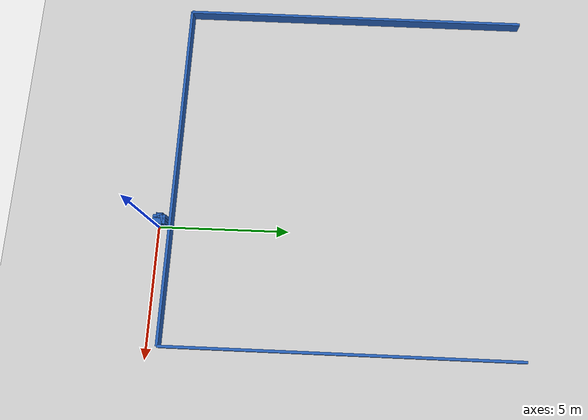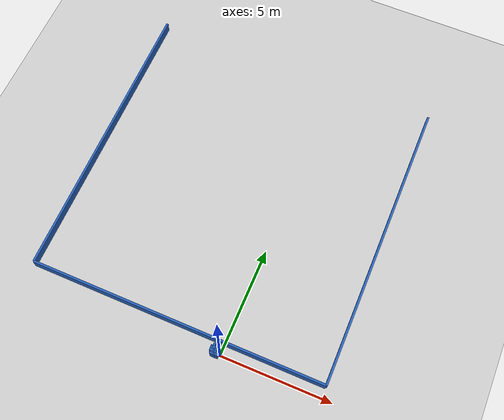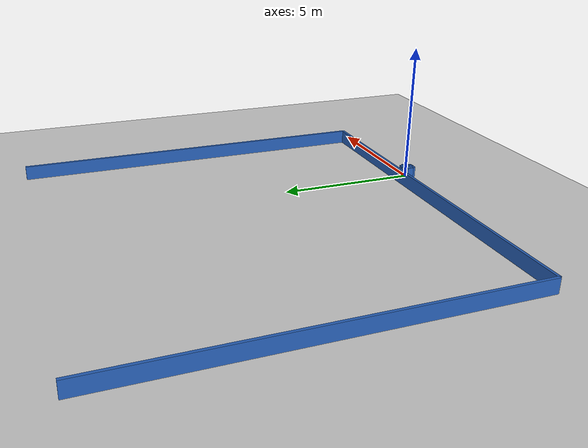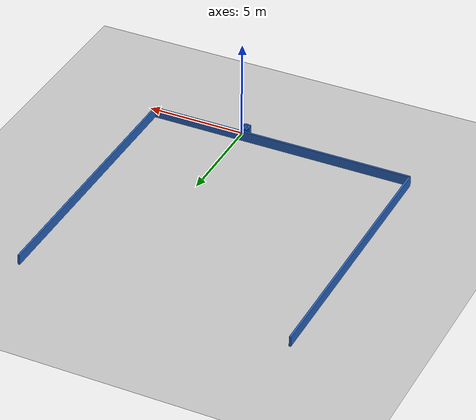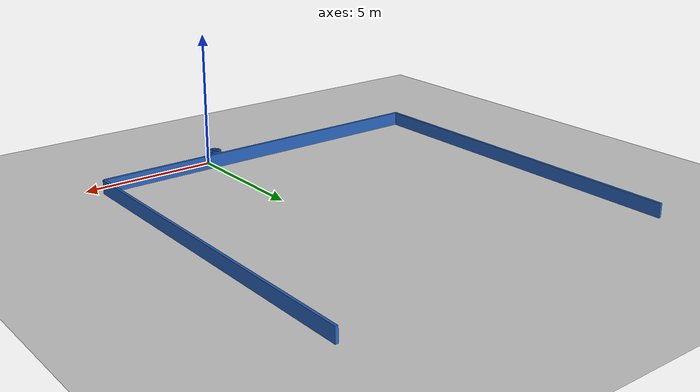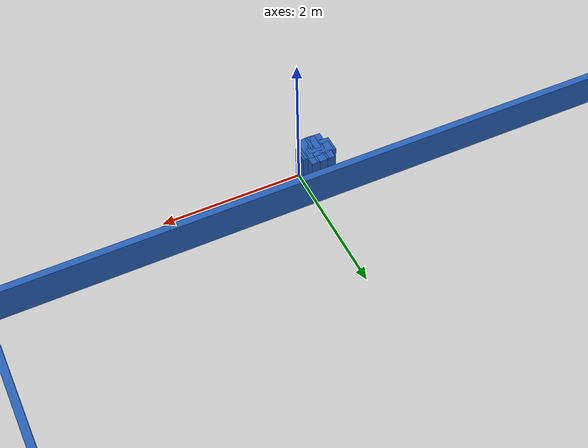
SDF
<?xml version="1.0" ?>
    <sdf version="1.5">
      <world name="default">
        <!-- A global light source -->
        <include>
          <uri>model://sun</uri>
        </include>
        <!-- A ground plane -->
        <include>
          <uri>model://ground_plane</uri>
        </include>

    <model name='libopen_space_final_T2B_112_81'>
      <static>1</static>
      <pose frame=''>-0.225000 0.075000 0.000000 0.000000 0.000000 0.000000</pose>
      <link name='link'>
        <inertial>
          <mass>1</mass>
          <inertia>
            <ixx>0.145833</ixx>
            <ixy>0</ixy>
            <ixz>0</ixz>
            <iyy>0.145833</iyy>
            <iyz>0</iyz>
            <izz>0.125</izz>
          </inertia>
        </inertial>
        <collision name='collision'>
          <geometry>
            <box>
              <size>0.11 0.49 1</size>
            </box>
          </geometry>
          <max_contacts>10</max_contacts>
          <surface>
            <contact>
              <ode/>
            </contact>
            <bounce/>
            <friction>
              <torsional>
                <ode/>
              </torsional>
              <ode/>
            </friction>
          </surface>
        </collision>
        <visual name='visual'>
          <geometry>
            <box>
              <size>0.11 0.49 1</size>
            </box>
          </geometry>
	    <material>
              <ambient>0.152000 0.379000 0.720000 1</ambient>
	      <diffuse>0.152000 0.379000 0.720000 1</diffuse>
          </material>
          <material>
            <script>
              <name>Gazebo/Grey</name>
              <uri>file://media/materials/scripts/gazebo.material</uri>
            </script>
          </material>
        </visual>
        <self_collide>0</self_collide>
        <kinematic>0</kinematic>
        <gravity>1</gravity>
      </link>
      <plugin name='libopen_space_final_T2B_112_81' filename='libopen_space_final_T2B_112_81.so'/>
    </model>

    <model name='libopen_space_final_T2B_115_72'>
      <static>1</static>
      <pose frame=''>-0.225000 0.075000 0.000000 0.000000 0.000000 0.000000</pose>
      <link name='link'>
        <inertial>
          <mass>1</mass>
          <inertia>
            <ixx>0.145833</ixx>
            <ixy>0</ixy>
            <ixz>0</ixz>
            <iyy>0.145833</iyy>
            <iyz>0</iyz>
            <izz>0.125</izz>
          </inertia>
        </inertial>
        <collision name='collision'>
          <geometry>
            <box>
              <size>0.43 0.20 1</size>
            </box>
          </geometry>
          <max_contacts>10</max_contacts>
          <surface>
            <contact>
              <ode/>
            </contact>
            <bounce/>
            <friction>
              <torsional>
                <ode/>
              </torsional>
              <ode/>
            </friction>
          </surface>
        </collision>
        <visual name='visual'>
          <geometry>
            <box>
              <size>0.43 0.20 1</size>
            </box>
          </geometry>
	    <material>
              <ambient>0.152000 0.379000 0.720000 1</ambient>
	      <diffuse>0.152000 0.379000 0.720000 1</diffuse>
          </material>
          <material>
            <script>
              <name>Gazebo/Grey</name>
              <uri>file://media/materials/scripts/gazebo.material</uri>
            </script>
          </material>
        </visual>
        <self_collide>0</self_collide>
        <kinematic>0</kinematic>
        <gravity>1</gravity>
      </link>
      <plugin name='libopen_space_final_T2B_115_72' filename='libopen_space_final_T2B_115_72.so'/>
    </model>

    <model name='libopen_space_final_T2B_77_83'>
      <static>1</static>
      <pose frame=''>-0.225000 0.075000 0.000000 0.000000 0.000000 0.000000</pose>
      <link name='link'>
        <inertial>
          <mass>1</mass>
          <inertia>
            <ixx>0.145833</ixx>
            <ixy>0</ixy>
            <ixz>0</ixz>
            <iyy>0.145833</iyy>
            <iyz>0</iyz>
            <izz>0.125</izz>
          </inertia>
        </inertial>
        <collision name='collision'>
          <geometry>
            <box>
              <size>0.16 0.39 1</size>
            </box>
          </geometry>
          <max_contacts>10</max_contacts>
          <surface>
            <contact>
              <ode/>
            </contact>
            <bounce/>
            <friction>
              <torsional>
                <ode/>
              </torsional>
              <ode/>
            </friction>
          </surface>
        </collision>
        <visual name='visual'>
          <geometry>
            <box>
              <size>0.16 0.39 1</size>
            </box>
          </geometry>
	    <material>
              <ambient>0.152000 0.379000 0.720000 1</ambient>
	      <diffuse>0.152000 0.379000 0.720000 1</diffuse>
          </material>
          <material>
            <script>
              <name>Gazebo/Grey</name>
              <uri>file://media/materials/scripts/gazebo.material</uri>
            </script>
          </material>
        </visual>
        <self_collide>0</self_collide>
        <kinematic>0</kinematic>
        <gravity>1</gravity>
      </link>
      <plugin name='libopen_space_final_T2B_77_83' filename='libopen_space_final_T2B_77_83.so'/>
    </model>

    <model name='libopen_space_final_T2B_81_4'>
      <static>1</static>
      <pose frame=''>-0.225000 0.075000 0.000000 0.000000 0.000000 0.000000</pose>
      <link name='link'>
        <inertial>
          <mass>1</mass>
          <inertia>
            <ixx>0.145833</ixx>
            <ixy>0</ixy>
            <ixz>0</ixz>
            <iyy>0.145833</iyy>
            <iyz>0</iyz>
            <izz>0.125</izz>
          </inertia>
        </inertial>
        <collision name='collision'>
          <geometry>
            <box>
              <size>0.17 0.46 1</size>
            </box>
          </geometry>
          <max_contacts>10</max_contacts>
          <surface>
            <contact>
              <ode/>
            </contact>
            <bounce/>
            <friction>
              <torsional>
                <ode/>
              </torsional>
              <ode/>
            </friction>
          </surface>
        </collision>
        <visual name='visual'>
          <geometry>
            <box>
              <size>0.17 0.46 1</size>
            </box>
          </geometry>
	    <material>
              <ambient>0.152000 0.379000 0.720000 1</ambient>
	      <diffuse>0.152000 0.379000 0.720000 1</diffuse>
          </material>
          <material>
            <script>
              <name>Gazebo/Grey</name>
              <uri>file://media/materials/scripts/gazebo.material</uri>
            </script>
          </material>
        </visual>
        <self_collide>0</self_collide>
        <kinematic>0</kinematic>
        <gravity>1</gravity>
      </link>
      <plugin name='libopen_space_final_T2B_81_4' filename='libopen_space_final_T2B_81_4.so'/>
    </model>

    <model name='libopen_space_final_T2B_83_23'>
      <static>1</static>
      <pose frame=''>-0.225000 0.075000 0.000000 0.000000 0.000000 0.000000</pose>
      <link name='link'>
        <inertial>
          <mass>1</mass>
          <inertia>
            <ixx>0.145833</ixx>
            <ixy>0</ixy>
            <ixz>0</ixz>
            <iyy>0.145833</iyy>
            <iyz>0</iyz>
            <izz>0.125</izz>
          </inertia>
        </inertial>
        <collision name='collision'>
          <geometry>
            <box>
              <size>0.35 0.48 1</size>
            </box>
          </geometry>
          <max_contacts>10</max_contacts>
          <surface>
            <contact>
              <ode/>
            </contact>
            <bounce/>
            <friction>
              <torsional>
                <ode/>
              </torsional>
              <ode/>
            </friction>
          </surface>
        </collision>
        <visual name='visual'>
          <geometry>
            <box>
              <size>0.35 0.48 1</size>
            </box>
          </geometry>
	    <material>
              <ambient>0.152000 0.379000 0.720000 1</ambient>
	      <diffuse>0.152000 0.379000 0.720000 1</diffuse>
          </material>
          <material>
            <script>
              <name>Gazebo/Grey</name>
              <uri>file://media/materials/scripts/gazebo.material</uri>
            </script>
          </material>
        </visual>
        <self_collide>0</self_collide>
        <kinematic>0</kinematic>
        <gravity>1</gravity>
      </link>
      <plugin name='libopen_space_final_T2B_83_23' filename='libopen_space_final_T2B_83_23.so'/>
    </model>

    <model name='libopen_space_final_T2B_67_47'>
      <static>1</static>
      <pose frame=''>-0.225000 0.075000 0.000000 0.000000 0.000000 0.000000</pose>
      <link name='link'>
        <inertial>
          <mass>1</mass>
          <inertia>
            <ixx>0.145833</ixx>
            <ixy>0</ixy>
            <ixz>0</ixz>
            <iyy>0.145833</iyy>
            <iyz>0</iyz>
            <izz>0.125</izz>
          </inertia>
        </inertial>
        <collision name='collision'>
          <geometry>
            <box>
              <size>0.23 0.10 1</size>
            </box>
          </geometry>
          <max_contacts>10</max_contacts>
          <surface>
            <contact>
              <ode/>
            </contact>
            <bounce/>
            <friction>
              <torsional>
                <ode/>
              </torsional>
              <ode/>
            </friction>
          </surface>
        </collision>
        <visual name='visual'>
          <geometry>
            <box>
              <size>0.23 0.10 1</size>
            </box>
          </geometry>
	    <material>
              <ambient>0.152000 0.379000 0.720000 1</ambient>
	      <diffuse>0.152000 0.379000 0.720000 1</diffuse>
          </material>
          <material>
            <script>
              <name>Gazebo/Grey</name>
              <uri>file://media/materials/scripts/gazebo.material</uri>
            </script>
          </material>
        </visual>
        <self_collide>0</self_collide>
        <kinematic>0</kinematic>
        <gravity>1</gravity>
      </link>
      <plugin name='libopen_space_final_T2B_67_47' filename='libopen_space_final_T2B_67_47.so'/>
    </model>

    <model name='libopen_space_final_T2B_105_94'>
      <static>1</static>
      <pose frame=''>-0.225000 0.075000 0.000000 0.000000 0.000000 0.000000</pose>
      <link name='link'>
        <inertial>
          <mass>1</mass>
          <inertia>
            <ixx>0.145833</ixx>
            <ixy>0</ixy>
            <ixz>0</ixz>
            <iyy>0.145833</iyy>
            <iyz>0</iyz>
            <izz>0.125</izz>
          </inertia>
        </inertial>
        <collision name='collision'>
          <geometry>
            <box>
              <size>0.31 0.26 1</size>
            </box>
          </geometry>
          <max_contacts>10</max_contacts>
          <surface>
            <contact>
              <ode/>
            </contact>
            <bounce/>
            <friction>
              <torsional>
                <ode/>
              </torsional>
              <ode/>
            </friction>
          </surface>
        </collision>
        <visual name='visual'>
          <geometry>
            <box>
              <size>0.31 0.26 1</size>
            </box>
          </geometry>
	    <material>
              <ambient>0.152000 0.379000 0.720000 1</ambient>
	      <diffuse>0.152000 0.379000 0.720000 1</diffuse>
          </material>
          <material>
            <script>
              <name>Gazebo/Grey</name>
              <uri>file://media/materials/scripts/gazebo.material</uri>
            </script>
          </material>
        </visual>
        <self_collide>0</self_collide>
        <kinematic>0</kinematic>
        <gravity>1</gravity>
      </link>
      <plugin name='libopen_space_final_T2B_105_94' filename='libopen_space_final_T2B_105_94.so'/>
    </model>

    <model name='libopen_space_final_T2B_90_76'>
      <static>1</static>
      <pose frame=''>-0.225000 0.075000 0.000000 0.000000 0.000000 0.000000</pose>
      <link name='link'>
        <inertial>
          <mass>1</mass>
          <inertia>
            <ixx>0.145833</ixx>
            <ixy>0</ixy>
            <ixz>0</ixz>
            <iyy>0.145833</iyy>
            <iyz>0</iyz>
            <izz>0.125</izz>
          </inertia>
        </inertial>
        <collision name='collision'>
          <geometry>
            <box>
              <size>0.49 0.24 1</size>
            </box>
          </geometry>
          <max_contacts>10</max_contacts>
          <surface>
            <contact>
              <ode/>
            </contact>
            <bounce/>
            <friction>
              <torsional>
                <ode/>
              </torsional>
              <ode/>
            </friction>
          </surface>
        </collision>
        <visual name='visual'>
          <geometry>
            <box>
              <size>0.49 0.24 1</size>
            </box>
          </geometry>
	    <material>
              <ambient>0.152000 0.379000 0.720000 1</ambient>
	      <diffuse>0.152000 0.379000 0.720000 1</diffuse>
          </material>
          <material>
            <script>
              <name>Gazebo/Grey</name>
              <uri>file://media/materials/scripts/gazebo.material</uri>
            </script>
          </material>
        </visual>
        <self_collide>0</self_collide>
        <kinematic>0</kinematic>
        <gravity>1</gravity>
      </link>
      <plugin name='libopen_space_final_T2B_90_76' filename='libopen_space_final_T2B_90_76.so'/>
    </model>

    <model name='libopen_space_final_T2B_80_70'>
      <static>1</static>
      <pose frame=''>-0.225000 0.075000 0.000000 0.000000 0.000000 0.000000</pose>
      <link name='link'>
        <inertial>
          <mass>1</mass>
          <inertia>
            <ixx>0.145833</ixx>
            <ixy>0</ixy>
            <ixz>0</ixz>
            <iyy>0.145833</iyy>
            <iyz>0</iyz>
            <izz>0.125</izz>
          </inertia>
        </inertial>
        <collision name='collision'>
          <geometry>
            <box>
              <size>0.18 0.33 1</size>
            </box>
          </geometry>
          <max_contacts>10</max_contacts>
          <surface>
            <contact>
              <ode/>
            </contact>
            <bounce/>
            <friction>
              <torsional>
                <ode/>
              </torsional>
              <ode/>
            </friction>
          </surface>
        </collision>
        <visual name='visual'>
          <geometry>
            <box>
              <size>0.18 0.33 1</size>
            </box>
          </geometry>
	    <material>
              <ambient>0.152000 0.379000 0.720000 1</ambient>
	      <diffuse>0.152000 0.379000 0.720000 1</diffuse>
          </material>
          <material>
            <script>
              <name>Gazebo/Grey</name>
              <uri>file://media/materials/scripts/gazebo.material</uri>
            </script>
          </material>
        </visual>
        <self_collide>0</self_collide>
        <kinematic>0</kinematic>
        <gravity>1</gravity>
      </link>
      <plugin name='libopen_space_final_T2B_80_70' filename='libopen_space_final_T2B_80_70.so'/>
    </model>

    <model name='libopen_space_final_T2B_77_65'>
      <static>1</static>
      <pose frame=''>-0.225000 0.075000 0.000000 0.000000 0.000000 0.000000</pose>
      <link name='link'>
        <inertial>
          <mass>1</mass>
          <inertia>
            <ixx>0.145833</ixx>
            <ixy>0</ixy>
            <ixz>0</ixz>
            <iyy>0.145833</iyy>
            <iyz>0</iyz>
            <izz>0.125</izz>
          </inertia>
        </inertial>
        <collision name='collision'>
          <geometry>
            <box>
              <size>0.16 0.25 1</size>
            </box>
          </geometry>
          <max_contacts>10</max_contacts>
          <surface>
            <contact>
              <ode/>
            </contact>
            <bounce/>
            <friction>
              <torsional>
                <ode/>
              </torsional>
              <ode/>
            </friction>
          </surface>
        </collision>
        <visual name='visual'>
          <geometry>
            <box>
              <size>0.16 0.25 1</size>
            </box>
          </geometry>
	    <material>
              <ambient>0.152000 0.379000 0.720000 1</ambient>
	      <diffuse>0.152000 0.379000 0.720000 1</diffuse>
          </material>
          <material>
            <script>
              <name>Gazebo/Grey</name>
              <uri>file://media/materials/scripts/gazebo.material</uri>
            </script>
          </material>
        </visual>
        <self_collide>0</self_collide>
        <kinematic>0</kinematic>
        <gravity>1</gravity>
      </link>
      <plugin name='libopen_space_final_T2B_77_65' filename='libopen_space_final_T2B_77_65.so'/>
    </model>

        <model name='bottom_wall'>
          <static>1</static>
          <pose frame=''>-2.25 0.5 0.000000 0.000000 0.000000 1.57079632</pose>
          <link name='link'>
            <inertial>
            <mass>1</mass>
            <inertia>
              <ixx>0.145833</ixx>
              <ixy>0</ixy>
              <ixz>0</ixz>
              <iyy>0.145833</iyy>
              <iyz>0</iyz>
              <izz>0.125</izz>
            </inertia>
            </inertial>
            <collision name='collision'>
            <geometry>
              <box>
              <size>0.1 13.5 1</size>
              </box>
            </geometry>
            <max_contacts>10</max_contacts>
            <surface>
              <contact>
              <ode/>
              </contact>
              <bounce/>
              <friction>
              <torsional>
                <ode/>
              </torsional>
              <ode/>
              </friction>
            </surface>
            </collision>
            <visual name='visual'>
            <geometry>
              <box>
              <size>0.1 13.5 1</size>
              </box>
            </geometry>
            <material>
              <ambient>0.152000 0.379000 0.720000 1</ambient>
            <diffuse>0.152000 0.379000 0.720000 1</diffuse>
            </material>
            <material>
              <script>
              <name>Gazebo/Grey</name>
              <uri>file://media/materials/scripts/gazebo.material</uri>
              </script>
            </material>
            </visual>
            <self_collide>0</self_collide>
            <kinematic>0</kinematic>
            <gravity>1</gravity>
          </link>
        </model>

        <model name='left_wall'>
          <static>1</static>
          <pose frame=''>-9 7.25 0.000000 0.000000 0.000000 0.000000</pose>
          <link name='link'>
            <inertial>
            <mass>1</mass>
            <inertia>
              <ixx>0.145833</ixx>
              <ixy>0</ixy>
              <ixz>0</ixz>
              <iyy>0.145833</iyy>
              <iyz>0</iyz>
              <izz>0.125</izz>
            </inertia>
            </inertial>
            <collision name='collision'>
            <geometry>
              <box>
              <size>0.1 13.5 1</size>
              </box>
            </geometry>
            <max_contacts>10</max_contacts>
            <surface>
              <contact>
              <ode/>
              </contact>
              <bounce/>
              <friction>
              <torsional>
                <ode/>
              </torsional>
              <ode/>
              </friction>
            </surface>
            </collision>
            <visual name='visual'>
            <geometry>
              <box>
              <size>0.1 13.5 1</size>
              </box>
            </geometry>
            <material>
              <ambient>0.152000 0.379000 0.720000 1</ambient>
            <diffuse>0.152000 0.379000 0.720000 1</diffuse>
            </material>
            <material>
              <script>
              <name>Gazebo/Grey</name>
              <uri>file://media/materials/scripts/gazebo.material</uri>
              </script>
            </material>
            </visual>
            <self_collide>0</self_collide>
            <kinematic>0</kinematic>
            <gravity>1</gravity>
          </link>
        </model>

        <model name='right_wall'>
          <static>1</static>
          <pose frame=''>4.5 7.25 0.000000 0.000000 0.000000 0.000000</pose>
          <link name='link'>
            <inertial>
            <mass>1</mass>
            <inertia>
              <ixx>0.145833</ixx>
              <ixy>0</ixy>
              <ixz>0</ixz>
              <iyy>0.145833</iyy>
              <iyz>0</iyz>
              <izz>0.125</izz>
            </inertia>
            </inertial>
            <collision name='collision'>
            <geometry>
              <box>
              <size>0.1 13.5 1</size>
              </box>
            </geometry>
            <max_contacts>10</max_contacts>
            <surface>
              <contact>
              <ode/>
              </contact>
              <bounce/>
              <friction>
              <torsional>
                <ode/>
              </torsional>
              <ode/>
              </friction>
            </surface>
            </collision>
            <visual name='visual'>
            <geometry>
              <box>
              <size>0.1 13.5 1</size>
              </box>
            </geometry>
            <material>
              <ambient>0.152000 0.379000 0.720000 1</ambient>
            <diffuse>0.152000 0.379000 0.720000 1</diffuse>
            </material>
            <material>
              <script>
              <name>Gazebo/Grey</name>
              <uri>file://media/materials/scripts/gazebo.material</uri>
              </script>
            </material>
            </visual>
            <self_collide>0</self_collide>
            <kinematic>0</kinematic>
            <gravity>1</gravity>
          </link>
        </model>

      </world>
    </sdf>"
